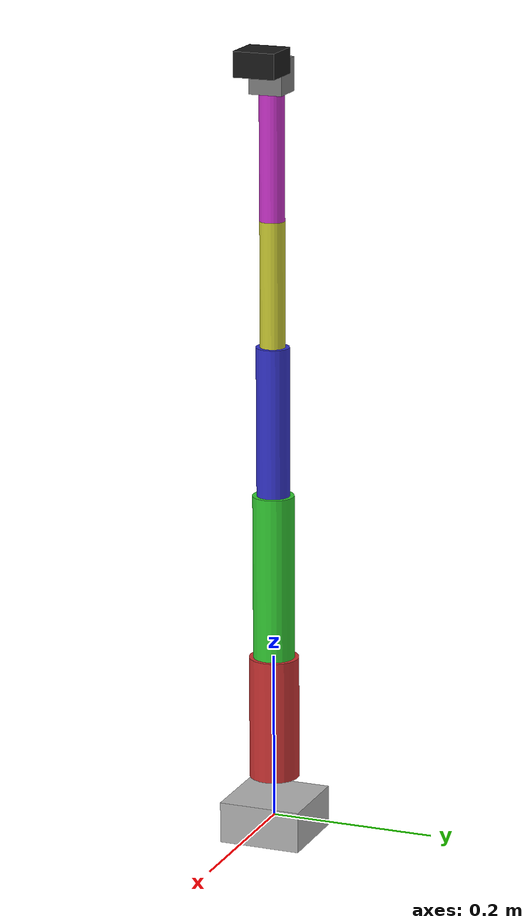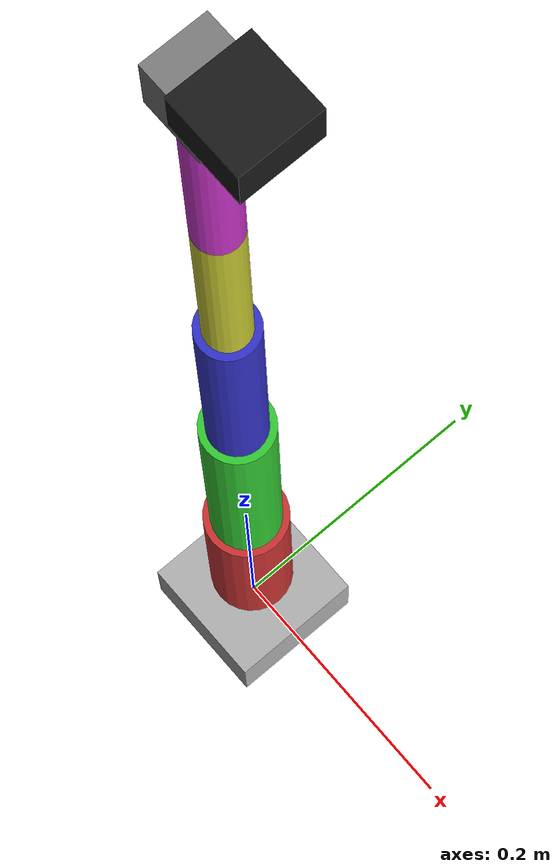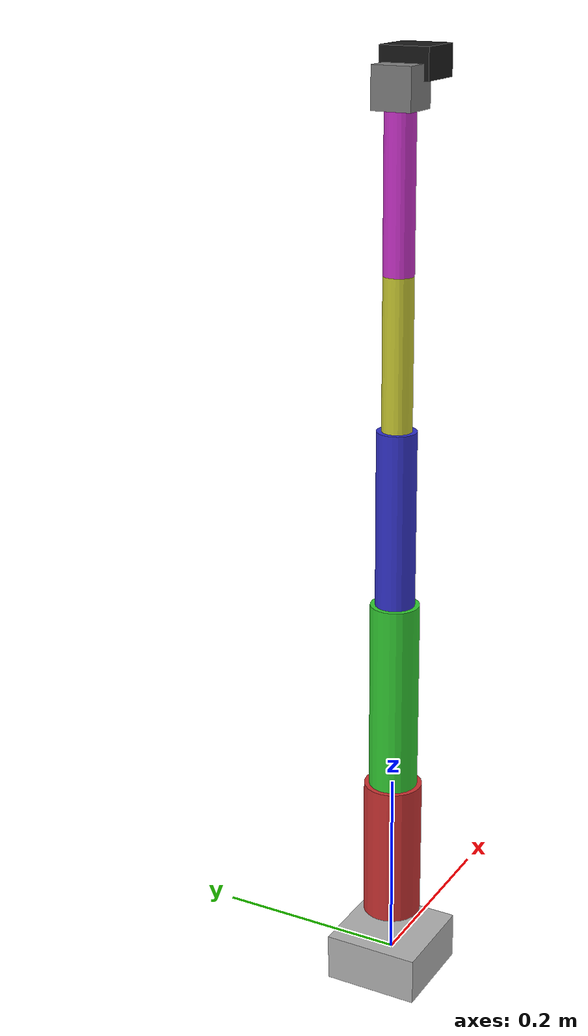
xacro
<?xml version="1.0"?>
<robot xmlns:xacro="http://www.ros.org/wiki/xacro" name="so_arm">

  <!-- Define constants -->
  <xacro:property name="PI" value="3.14159265359" />

  <!-- Base Link -->
  <link name="base_link">
    <visual>
      <geometry>
        <box size="0.1 0.1 0.05"/>
      </geometry>
      <material name="base_material">
        <color rgba="0.7 0.7 0.7 1.0"/>
      </material>
    </visual>
    <collision>
      <geometry>
        <box size="0.1 0.1 0.05"/>
      </geometry>
    </collision>
    <inertial>
      <mass value="2.0"/>
      <inertia ixx="0.01" ixy="0.0" ixz="0.0" iyy="0.01" iyz="0.0" izz="0.01"/>
    </inertial>
  </link>

  <!-- Link 1 (Shoulder) -->
  <link name="link_1">
    <visual>
      <geometry>
        <cylinder radius="0.03" length="0.15"/>
      </geometry>
      <origin rpy="0 0 0" xyz="0 0 0.075"/>
      <material name="link_material">
        <color rgba="0.8 0.2 0.2 1.0"/>
      </material>
    </visual>
    <collision>
      <geometry>
        <cylinder radius="0.03" length="0.15"/>
      </geometry>
      <origin rpy="0 0 0" xyz="0 0 0.075"/>
    </collision>
    <inertial>
      <mass value="1.5"/>
      <origin xyz="0 0 0.075"/>
      <inertia ixx="0.01" ixy="0.0" ixz="0.0" iyy="0.01" iyz="0.0" izz="0.001"/>
    </inertial>
  </link>

  <!-- Joint 1 (Shoulder - Z rotation) -->
  <joint name="shoulder_pan_joint" type="revolute">
    <parent link="base_link"/>
    <child link="link_1"/>
    <origin xyz="0 0 0.05" rpy="0 0 0"/>
    <axis xyz="0 0 1"/>
    <limit lower="-${PI}" upper="${PI}" effort="100.0" velocity="1.5"/>
    <dynamics damping="0.1" friction="0.1"/>
  </joint>

  <!-- Link 2 (Upper Arm) -->
  <link name="link_2">
    <visual>
      <geometry>
        <cylinder radius="0.025" length="0.20"/>
      </geometry>
      <origin rpy="0 0 0" xyz="0 0 0.1"/>
      <material name="link_material">
        <color rgba="0.2 0.8 0.2 1.0"/>
      </material>
    </visual>
    <collision>
      <geometry>
        <cylinder radius="0.025" length="0.20"/>
      </geometry>
      <origin rpy="0 0 0" xyz="0 0 0.1"/>
    </collision>
    <inertial>
      <mass value="1.2"/>
      <origin xyz="0 0 0.1"/>
      <inertia ixx="0.008" ixy="0.0" ixz="0.0" iyy="0.008" iyz="0.0" izz="0.0008"/>
    </inertial>
  </link>

  <!-- Joint 2 (Shoulder - Y rotation) -->
  <joint name="shoulder_lift_joint" type="revolute">
    <parent link="link_1"/>
    <child link="link_2"/>
    <origin xyz="0 0 0.15" rpy="0 0 0"/>
    <axis xyz="0 1 0"/>
    <limit lower="-${PI/2}" upper="${PI/2}" effort="100.0" velocity="1.5"/>
    <dynamics damping="0.1" friction="0.1"/>
  </joint>

  <!-- Link 3 (Lower Arm) -->
  <link name="link_3">
    <visual>
      <geometry>
        <cylinder radius="0.02" length="0.18"/>
      </geometry>
      <origin rpy="0 0 0" xyz="0 0 0.09"/>
      <material name="link_material">
        <color rgba="0.2 0.2 0.8 1.0"/>
      </material>
    </visual>
    <collision>
      <geometry>
        <cylinder radius="0.02" length="0.18"/>
      </geometry>
      <origin rpy="0 0 0" xyz="0 0 0.09"/>
    </collision>
    <inertial>
      <mass value="1.0"/>
      <origin xyz="0 0 0.09"/>
      <inertia ixx="0.006" ixy="0.0" ixz="0.0" iyy="0.006" iyz="0.0" izz="0.0006"/>
    </inertial>
  </link>

  <!-- Joint 3 (Elbow) -->
  <joint name="elbow_joint" type="revolute">
    <parent link="link_2"/>
    <child link="link_3"/>
    <origin xyz="0 0 0.20" rpy="0 0 0"/>
    <axis xyz="0 1 0"/>
    <limit lower="-${PI}" upper="${PI}" effort="50.0" velocity="1.5"/>
    <dynamics damping="0.1" friction="0.1"/>
  </joint>

  <!-- Link 4 (Wrist 1) -->
  <link name="link_4">
    <visual>
      <geometry>
        <cylinder radius="0.015" length="0.15"/>
      </geometry>
      <origin rpy="0 0 0" xyz="0 0 0.075"/>
      <material name="link_material">
        <color rgba="0.8 0.8 0.2 1.0"/>
      </material>
    </visual>
    <collision>
      <geometry>
        <cylinder radius="0.015" length="0.15"/>
      </geometry>
      <origin rpy="0 0 0" xyz="0 0 0.075"/>
    </collision>
    <inertial>
      <mass value="0.8"/>
      <origin xyz="0 0 0.075"/>
      <inertia ixx="0.004" ixy="0.0" ixz="0.0" iyy="0.004" iyz="0.0" izz="0.0004"/>
    </inertial>
  </link>

  <!-- Joint 4 (Wrist Rotation - Z) -->
  <joint name="wrist_1_joint" type="revolute">
    <parent link="link_3"/>
    <child link="link_4"/>
    <origin xyz="0 0 0.18" rpy="0 0 0"/>
    <axis xyz="0 0 1"/>
    <limit lower="-${PI}" upper="${PI}" effort="30.0" velocity="2.0"/>
    <dynamics damping="0.05" friction="0.05"/>
  </joint>

  <!-- Link 5 (Wrist 2) -->
  <link name="link_5">
    <visual>
      <geometry>
        <cylinder radius="0.015" length="0.15"/>
      </geometry>
      <origin rpy="0 0 0" xyz="0 0 0.075"/>
      <material name="link_material">
        <color rgba="0.8 0.2 0.8 1.0"/>
      </material>
    </visual>
    <collision>
      <geometry>
        <cylinder radius="0.015" length="0.15"/>
      </geometry>
      <origin rpy="0 0 0" xyz="0 0 0.075"/>
    </collision>
    <inertial>
      <mass value="0.8"/>
      <origin xyz="0 0 0.075"/>
      <inertia ixx="0.004" ixy="0.0" ixz="0.0" iyy="0.004" iyz="0.0" izz="0.0004"/>
    </inertial>
  </link>

  <!-- Joint 5 (Wrist - Y rotation) -->
  <joint name="wrist_2_joint" type="revolute">
    <parent link="link_4"/>
    <child link="link_5"/>
    <origin xyz="0 0 0.15" rpy="0 0 0"/>
    <axis xyz="0 1 0"/>
    <limit lower="-${PI/2}" upper="${PI/2}" effort="30.0" velocity="2.0"/>
    <dynamics damping="0.05" friction="0.05"/>
  </joint>

  <!-- Link 6 (End Effector Mount) -->
  <link name="link_6">
    <visual>
      <geometry>
        <box size="0.04 0.04 0.04"/>
      </geometry>
      <origin rpy="0 0 0" xyz="0 0 0.02"/>
      <material name="end_effector_material">
        <color rgba="0.5 0.5 0.5 1.0"/>
      </material>
    </visual>
    <collision>
      <geometry>
        <box size="0.04 0.04 0.04"/>
      </geometry>
      <origin rpy="0 0 0" xyz="0 0 0.02"/>
    </collision>
    <inertial>
      <mass value="0.5"/>
      <origin xyz="0 0 0.02"/>
      <inertia ixx="0.0002" ixy="0.0" ixz="0.0" iyy="0.0002" iyz="0.0" izz="0.0002"/>
    </inertial>
  </link>

  <!-- Joint 6 (Wrist - Z rotation) -->
  <joint name="wrist_3_joint" type="revolute">
    <parent link="link_5"/>
    <child link="link_6"/>
    <origin xyz="0 0 0.15" rpy="0 0 0"/>
    <axis xyz="0 0 1"/>
    <limit lower="-${PI}" upper="${PI}" effort="20.0" velocity="2.0"/>
    <dynamics damping="0.05" friction="0.05"/>
  </joint>

  <!-- Camera Link -->
  <link name="camera_link">
    <visual>
      <geometry>
        <box size="0.05 0.05 0.03"/>
      </geometry>
      <origin rpy="0 0 0" xyz="0 0 0"/>
      <material name="camera_material">
        <color rgba="0.1 0.1 0.1 1.0"/>
      </material>
    </visual>
    <collision>
      <geometry>
        <box size="0.05 0.05 0.03"/>
      </geometry>
    </collision>
    <inertial>
      <mass value="0.1"/>
      <inertia ixx="0.0001" ixy="0.0" ixz="0.0" iyy="0.0001" iyz="0.0" izz="0.0001"/>
    </inertial>
  </link>

  <!-- Camera Joint -->
  <joint name="camera_joint" type="fixed">
    <parent link="link_6"/>
    <child link="camera_link"/>
    <origin xyz="0.03 0 0.04" rpy="0 0 0"/>
  </joint>

  <!-- Camera Optical Frame -->
  <link name="camera_optical_frame"/>

  <joint name="camera_optical_joint" type="fixed">
    <parent link="camera_link"/>
    <child link="camera_optical_frame"/>
    <origin xyz="0 0 0" rpy="${-PI/2} 0 ${-PI/2}"/>
  </joint>

</robot>
